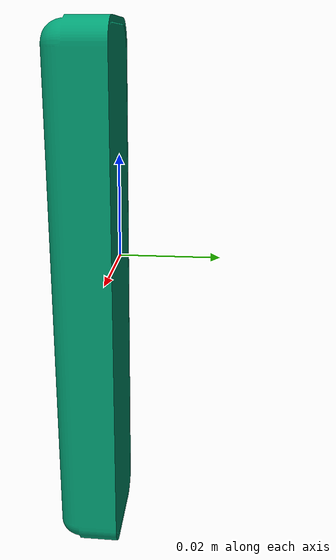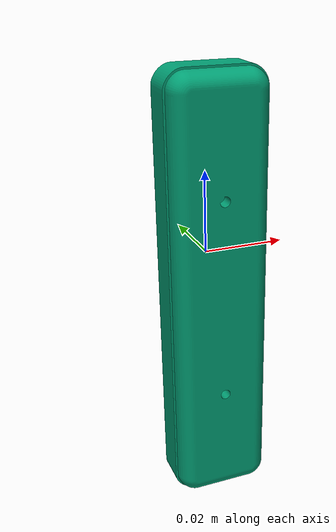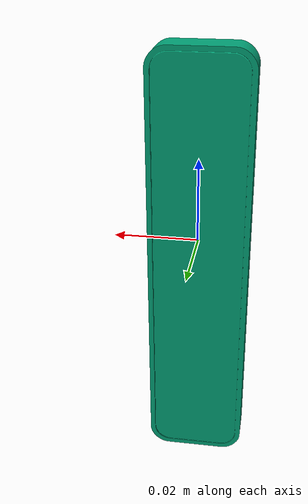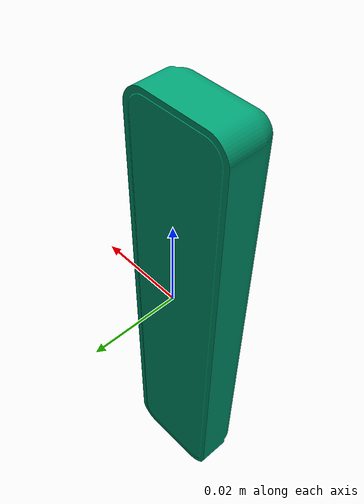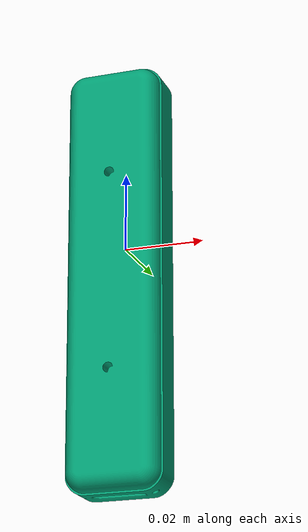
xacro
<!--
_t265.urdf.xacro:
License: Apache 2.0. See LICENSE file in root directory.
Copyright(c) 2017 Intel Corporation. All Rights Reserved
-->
<?xml version="1.0"?>
<robot name="realsense2_camera" xmlns:xacro="http://ros.org/wiki/xacro">
  <xacro:include filename="$(find realsense2_description)/urdf/_t265.urdf.xacro" />

  <link name="base_link" />
  <xacro:sensor_t265 parent="base_link">
    <origin xyz="0 0 0" rpy="0 0 0"/>
  </xacro:sensor_t265>
</robot>

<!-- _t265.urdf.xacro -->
<robot name="sensor_t265" xmlns:xacro="http://ros.org/wiki/xacro">
  <!--File includes-->
  <xacro:include filename="$(find realsense2_description)/urdf/_materials.urdf.xacro" />
  <xacro:macro name="sensor_t265" params="parent name:=camera topics_ns:=camera *origin">
    <xacro:property name="M_PI" value="3.1415926535897931" />

    <!-- The following values are approximate, and the camera node
     publishing TF values with actual calibrated camera extrinsic values -->
    <xacro:property name="fisheye1_offset_x" value="-0.0411"/>
    <xacro:property name="fisheye1_offset_y" value="0.0"/>
    <xacro:property name="fisheye1_offset_z" value="0.0"/>

    <xacro:property name="fisheye2_offset_x" value="0.0229"/>
    <xacro:property name="fisheye2_offset_y" value="0.0"/>
    <xacro:property name="fisheye2_offset_z" value="0.0"/>

    <!-- camera body, with origin at camera_link -->
    <joint name="${name}_pose_frame_joint" type="fixed">
      <xacro:insert_block name="origin" />
      <parent link="${parent}"/>
      <child link="${name}_pose_frame" />
    </joint>
    <link name="${name}_pose_frame"/>

    <joint name="${name}_pose_joint" type="fixed">
      <origin xyz="0 0 0" rpy="${M_PI/2} 0 ${M_PI/2}"/>
      <parent link="${name}_pose_frame"/>
      <child link="${name}_link" />
    </joint>

    <link name="${name}_link">
      <visual>
      <origin xyz="0 0 0" rpy="0 0 0"/>
        <geometry>
            <mesh filename="package://realsense2_description/meshes/t265.stl" />
        </geometry>
        <material name="aluminum"/>
      </visual>
      <collision>
        <origin xyz="0 0 0" rpy="0 0 0"/>
        <geometry>
          <mesh filename="package://realsense2_description/meshes/t265.stl" />
        </geometry>
      </collision>
      <inertial>
        <!-- The following are not reliable values, and should not be used for modeling -->
        <mass value="0.068024" />
        <origin xyz="0 0 0" />
        <inertia ixx="0.0000039782" ixy="0.0" ixz="0.000000034641" iyy="0.000065045" iyz="0.0" izz="0.000067499" />
      </inertial>
    </link>

    <joint name="${name}_fisheye1_rgb_joint" type="fixed">
      <origin xyz="${fisheye1_offset_x} ${fisheye1_offset_y} ${fisheye1_offset_z}" rpy="0 ${M_PI/2} ${M_PI/2}"/>
      <parent link="${name}_link"/>
      <child link="${name}_fisheye1_rgb_frame" />
    </joint>
    <link name="${name}_fisheye1_rgb_frame"/>

    <joint name="${name}_fisheye2_rgb_joint" type="fixed">
      <origin xyz="${fisheye2_offset_x} ${fisheye2_offset_y} ${fisheye2_offset_z}" rpy="0 ${M_PI/2} ${M_PI/2}"/>
      <parent link="${name}_link"/>
      <child link="${name}_fisheye2_rgb_frame" />
    </joint>
    <link name="${name}_fisheye2_rgb_frame"/>

    <joint name="${name}_fisheye1_optical_joint" type="fixed">
      <origin xyz="0 0 0" rpy="-${M_PI/2} 0 -${M_PI/2}"/>
      <parent link="${name}_fisheye1_rgb_frame"/>
      <child link="${name}_fisheye1_optical_frame" />
    </joint>
    <link name="${name}_fisheye1_optical_frame"/>

    <joint name="${name}_fisheye2_optical_joint" type="fixed">
      <origin xyz="0 0 0" rpy="-${M_PI/2} 0 -${M_PI/2}"/>
      <parent link="${name}_fisheye2_rgb_frame"/>
      <child link="${name}_fisheye2_optical_frame" />
    </joint>
    <link name="${name}_fisheye2_optical_frame"/>

    <!-- camera depth joints and links -->
    <joint name="${name}_gyro_optical_joint" type="fixed">
      <origin xyz="-0.0311 0 0.00655" rpy="0 ${M_PI} 0"/>
      <parent link="${name}_link"/>
      <child link="${name}_gyro_optical_frame" />
    </joint>
    <link name="${name}_gyro_optical_frame"/>

    <joint name="${name}_accel_optical_joint" type="fixed">
      <origin xyz="0 0 0" rpy="0 0 0"/>
      <parent link="${name}_gyro_optical_frame"/>
      <child link="${name}_accel_optical_frame" />
    </joint>
    <link name="${name}_accel_optical_frame"/>

  </xacro:macro>

</robot>
